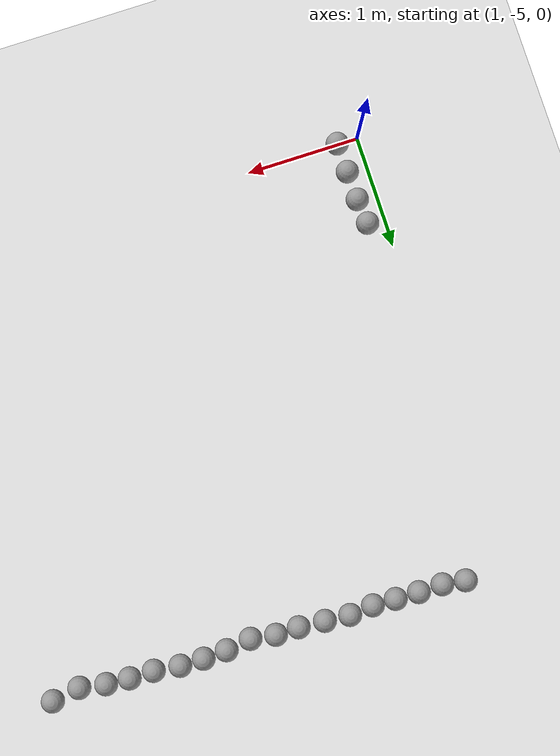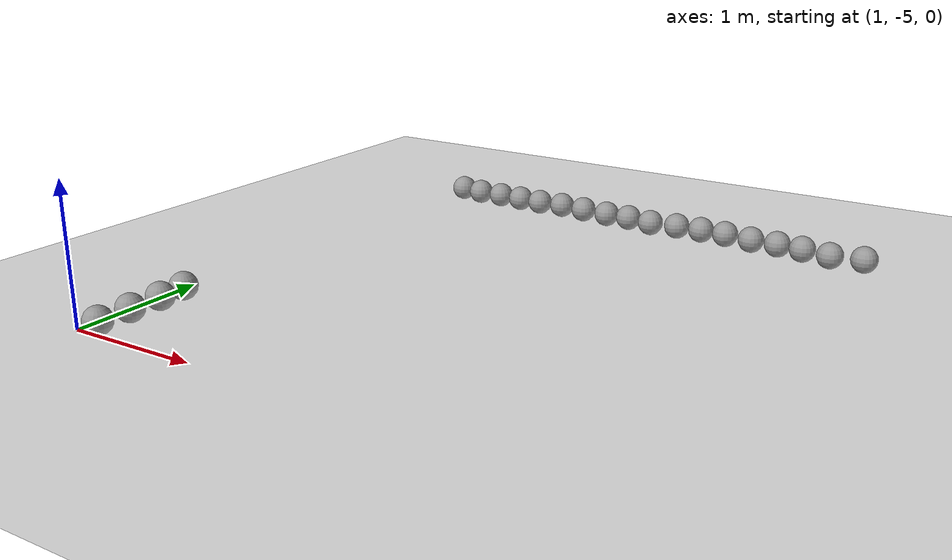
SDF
<sdf version="1.7">
 <world name="default">
  <model name="ground_plane">
   <static>1</static>
   <link name="link">
    <collision name="collision">
     <geometry><plane><normal>0 0 1</normal><size>100 100</size></plane></geometry>
     <surface>
      <contact><collide_bitmask>65535</collide_bitmask></contact>
      <friction><ode><mu>100</mu><mu2>50</mu2></ode></friction>
     </surface>
    </collision>
    <visual name="visual">
     <cast_shadows>0</cast_shadows>
     <geometry><plane><normal>0 0 1</normal><size>100 100</size></plane></geometry>
     <material>
      <script><uri>file://media/materials/scripts/gazebo.material</uri><name>Gazebo/White</name></script>
     </material>
    </visual>
   </link>
  </model>
  <model name="sphere_52">
   <link name="link_0">
    <inertial>
     <mass>1</mass>
     <inertia><ixx>0.1</ixx><ixy>0</ixy><ixz>0</ixz><iyy>0.1</iyy><iyz>0</iyz><izz>0.1</izz></inertia>
    </inertial>
    <visual name="visual">
     <geometry><sphere><radius>0.1</radius></sphere></geometry>
     <material>
      <lighting>1</lighting>
      <script><uri>file://media/materials/scripts/gazebo.material</uri><name>Gazebo/Grey</name></script>
      <shader type="pixel"><normal_map>__default__</normal_map></shader>
      <ambient>0.3 0.3 0.3 1</ambient>
      <diffuse>0.7 0.7 0.7 1</diffuse>
      <specular>0.01 0.01 0.01 1</specular>
      <emissive>0 0 0 1</emissive>
     </material>
    </visual>
    <collision name="collision">
     <geometry><sphere><radius>0.1</radius></sphere></geometry>
     <surface>
      <friction>
       <ode><mu>1</mu><mu2>1</mu2><fdir1>0 0 0</fdir1><slip1>0</slip1><slip2>0</slip2></ode>
       <torsional>
        <coefficient>1</coefficient>
        <patch_radius>0</patch_radius>
        <surface_radius>0</surface_radius>
        <use_patch_radius>1</use_patch_radius>
        <ode><slip>0</slip></ode>
       </torsional>
      </friction>
      <bounce><restitution_coefficient>0</restitution_coefficient><threshold>1e+06</threshold></bounce>
      <contact>
       <collide_without_contact>0</collide_without_contact>
       <collide_without_contact_bitmask>1</collide_without_contact_bitmask>
       <collide_bitmask>1</collide_bitmask>
       <ode>
        <soft_cfm>0</soft_cfm>
        <soft_erp>0.2</soft_erp>
        <kp>1e+13</kp>
        <kd>1</kd>
        <max_vel>0.01</max_vel>
        <min_depth>0</min_depth>
       </ode>
       <bullet>
        <split_impulse>1</split_impulse>
        <split_impulse_penetration_threshold>-0.01</split_impulse_penetration_threshold>
        <soft_cfm>0</soft_cfm>
        <soft_erp>0.2</soft_erp>
        <kp>1e+13</kp>
        <kd>1</kd>
       </bullet>
      </contact>
     </surface>
    </collision>
   </link>
   <static>0</static>
   <pose>1.33949 -1.07851 0.1 -0.03644 0.020857 -0.02948</pose>
  </model>
  <model name="sphere_53">
   <link name="link_0">
    <inertial>
     <mass>1</mass>
     <inertia><ixx>0.1</ixx><ixy>0</ixy><ixz>0</ixz><iyy>0.1</iyy><iyz>0</iyz><izz>0.1</izz></inertia>
    </inertial>
    <visual name="visual">
     <geometry><sphere><radius>0.1</radius></sphere></geometry>
     <material>
      <lighting>1</lighting>
      <script><uri>file://media/materials/scripts/gazebo.material</uri><name>Gazebo/Grey</name></script>
      <shader type="pixel"><normal_map>__default__</normal_map></shader>
      <ambient>0.3 0.3 0.3 1</ambient>
      <diffuse>0.7 0.7 0.7 1</diffuse>
      <specular>0.01 0.01 0.01 1</specular>
      <emissive>0 0 0 1</emissive>
     </material>
    </visual>
    <collision name="collision">
     <geometry><sphere><radius>0.1</radius></sphere></geometry>
     <surface>
      <friction>
       <ode><mu>1</mu><mu2>1</mu2><fdir1>0 0 0</fdir1><slip1>0</slip1><slip2>0</slip2></ode>
       <torsional>
        <coefficient>1</coefficient>
        <patch_radius>0</patch_radius>
        <surface_radius>0</surface_radius>
        <use_patch_radius>1</use_patch_radius>
        <ode><slip>0</slip></ode>
       </torsional>
      </friction>
      <bounce><restitution_coefficient>0</restitution_coefficient><threshold>1e+06</threshold></bounce>
      <contact>
       <collide_without_contact>0</collide_without_contact>
       <collide_without_contact_bitmask>1</collide_without_contact_bitmask>
       <collide_bitmask>1</collide_bitmask>
       <ode>
        <soft_cfm>0</soft_cfm>
        <soft_erp>0.2</soft_erp>
        <kp>1e+13</kp>
        <kd>1</kd>
        <max_vel>0.01</max_vel>
        <min_depth>0</min_depth>
       </ode>
       <bullet>
        <split_impulse>1</split_impulse>
        <split_impulse_penetration_threshold>-0.01</split_impulse_penetration_threshold>
        <soft_cfm>0</soft_cfm>
        <soft_erp>0.2</soft_erp>
        <kp>1e+13</kp>
        <kd>1</kd>
       </bullet>
      </contact>
     </surface>
    </collision>
   </link>
   <static>0</static>
   <pose>1.53863 -1.10758 0.1 0 -0 0</pose>
  </model>
  <model name="sphere_54">
   <link name="link_0">
    <inertial>
     <mass>1</mass>
     <inertia><ixx>0.1</ixx><ixy>0</ixy><ixz>0</ixz><iyy>0.1</iyy><iyz>0</iyz><izz>0.1</izz></inertia>
    </inertial>
    <visual name="visual">
     <geometry><sphere><radius>0.1</radius></sphere></geometry>
     <material>
      <lighting>1</lighting>
      <script><uri>file://media/materials/scripts/gazebo.material</uri><name>Gazebo/Grey</name></script>
      <shader type="pixel"><normal_map>__default__</normal_map></shader>
      <ambient>0.3 0.3 0.3 1</ambient>
      <diffuse>0.7 0.7 0.7 1</diffuse>
      <specular>0.01 0.01 0.01 1</specular>
      <emissive>0 0 0 1</emissive>
     </material>
    </visual>
    <collision name="collision">
     <geometry><sphere><radius>0.1</radius></sphere></geometry>
     <surface>
      <friction>
       <ode><mu>1</mu><mu2>1</mu2><fdir1>0 0 0</fdir1><slip1>0</slip1><slip2>0</slip2></ode>
       <torsional>
        <coefficient>1</coefficient>
        <patch_radius>0</patch_radius>
        <surface_radius>0</surface_radius>
        <use_patch_radius>1</use_patch_radius>
        <ode><slip>0</slip></ode>
       </torsional>
      </friction>
      <bounce><restitution_coefficient>0</restitution_coefficient><threshold>1e+06</threshold></bounce>
      <contact>
       <collide_without_contact>0</collide_without_contact>
       <collide_without_contact_bitmask>1</collide_without_contact_bitmask>
       <collide_bitmask>1</collide_bitmask>
       <ode>
        <soft_cfm>0</soft_cfm>
        <soft_erp>0.2</soft_erp>
        <kp>1e+13</kp>
        <kd>1</kd>
        <max_vel>0.01</max_vel>
        <min_depth>0</min_depth>
       </ode>
       <bullet>
        <split_impulse>1</split_impulse>
        <split_impulse_penetration_threshold>-0.01</split_impulse_penetration_threshold>
        <soft_cfm>0</soft_cfm>
        <soft_erp>0.2</soft_erp>
        <kp>1e+13</kp>
        <kd>1</kd>
       </bullet>
      </contact>
     </surface>
    </collision>
   </link>
   <static>0</static>
   <pose>1.74654 -1.10677 0.1 -0.002019 -0.054889 0.000367</pose>
  </model>
  <model name="sphere_55">
   <link name="link_0">
    <inertial>
     <mass>1</mass>
     <inertia><ixx>0.1</ixx><ixy>0</ixy><ixz>0</ixz><iyy>0.1</iyy><iyz>0</iyz><izz>0.1</izz></inertia>
    </inertial>
    <visual name="visual">
     <geometry><sphere><radius>0.1</radius></sphere></geometry>
     <material>
      <lighting>1</lighting>
      <script><uri>file://media/materials/scripts/gazebo.material</uri><name>Gazebo/Grey</name></script>
      <shader type="pixel"><normal_map>__default__</normal_map></shader>
      <ambient>0.3 0.3 0.3 1</ambient>
      <diffuse>0.7 0.7 0.7 1</diffuse>
      <specular>0.01 0.01 0.01 1</specular>
      <emissive>0 0 0 1</emissive>
     </material>
    </visual>
    <collision name="collision">
     <geometry><sphere><radius>0.1</radius></sphere></geometry>
     <surface>
      <friction>
       <ode><mu>1</mu><mu2>1</mu2><fdir1>0 0 0</fdir1><slip1>0</slip1><slip2>0</slip2></ode>
       <torsional>
        <coefficient>1</coefficient>
        <patch_radius>0</patch_radius>
        <surface_radius>0</surface_radius>
        <use_patch_radius>1</use_patch_radius>
        <ode><slip>0</slip></ode>
       </torsional>
      </friction>
      <bounce><restitution_coefficient>0</restitution_coefficient><threshold>1e+06</threshold></bounce>
      <contact>
       <collide_without_contact>0</collide_without_contact>
       <collide_without_contact_bitmask>1</collide_without_contact_bitmask>
       <collide_bitmask>1</collide_bitmask>
       <ode>
        <soft_cfm>0</soft_cfm>
        <soft_erp>0.2</soft_erp>
        <kp>1e+13</kp>
        <kd>1</kd>
        <max_vel>0.01</max_vel>
        <min_depth>0</min_depth>
       </ode>
       <bullet>
        <split_impulse>1</split_impulse>
        <split_impulse_penetration_threshold>-0.01</split_impulse_penetration_threshold>
        <soft_cfm>0</soft_cfm>
        <soft_erp>0.2</soft_erp>
        <kp>1e+13</kp>
        <kd>1</kd>
       </bullet>
      </contact>
     </surface>
    </collision>
   </link>
   <static>0</static>
   <pose>1.95037 -1.11313 0.1 0.001673 0.048323 0.000366</pose>
  </model>
  <model name="sphere_56">
   <link name="link_0">
    <inertial>
     <mass>1</mass>
     <inertia><ixx>0.1</ixx><ixy>0</ixy><ixz>0</ixz><iyy>0.1</iyy><iyz>0</iyz><izz>0.1</izz></inertia>
    </inertial>
    <visual name="visual">
     <geometry><sphere><radius>0.1</radius></sphere></geometry>
     <material>
      <lighting>1</lighting>
      <script><uri>file://media/materials/scripts/gazebo.material</uri><name>Gazebo/Grey</name></script>
      <shader type="pixel"><normal_map>__default__</normal_map></shader>
      <ambient>0.3 0.3 0.3 1</ambient>
      <diffuse>0.7 0.7 0.7 1</diffuse>
      <specular>0.01 0.01 0.01 1</specular>
      <emissive>0 0 0 1</emissive>
     </material>
    </visual>
    <collision name="collision">
     <geometry><sphere><radius>0.1</radius></sphere></geometry>
     <surface>
      <friction>
       <ode><mu>1</mu><mu2>1</mu2><fdir1>0 0 0</fdir1><slip1>0</slip1><slip2>0</slip2></ode>
       <torsional>
        <coefficient>1</coefficient>
        <patch_radius>0</patch_radius>
        <surface_radius>0</surface_radius>
        <use_patch_radius>1</use_patch_radius>
        <ode><slip>0</slip></ode>
       </torsional>
      </friction>
      <bounce><restitution_coefficient>0</restitution_coefficient><threshold>1e+06</threshold></bounce>
      <contact>
       <collide_without_contact>0</collide_without_contact>
       <collide_without_contact_bitmask>1</collide_without_contact_bitmask>
       <collide_bitmask>1</collide_bitmask>
       <ode>
        <soft_cfm>0</soft_cfm>
        <soft_erp>0.2</soft_erp>
        <kp>1e+13</kp>
        <kd>1</kd>
        <max_vel>0.01</max_vel>
        <min_depth>0</min_depth>
       </ode>
       <bullet>
        <split_impulse>1</split_impulse>
        <split_impulse_penetration_threshold>-0.01</split_impulse_penetration_threshold>
        <soft_cfm>0</soft_cfm>
        <soft_erp>0.2</soft_erp>
        <kp>1e+13</kp>
        <kd>1</kd>
       </bullet>
      </contact>
     </surface>
    </collision>
   </link>
   <static>0</static>
   <pose>2.15023 -1.12104 0.1 3.5e-05 0.000553 1.5e-05</pose>
  </model>
  <model name="sphere_57">
   <link name="link_0">
    <inertial>
     <mass>1</mass>
     <inertia><ixx>0.1</ixx><ixy>0</ixy><ixz>0</ixz><iyy>0.1</iyy><iyz>0</iyz><izz>0.1</izz></inertia>
    </inertial>
    <visual name="visual">
     <geometry><sphere><radius>0.1</radius></sphere></geometry>
     <material>
      <lighting>1</lighting>
      <script><uri>file://media/materials/scripts/gazebo.material</uri><name>Gazebo/Grey</name></script>
      <shader type="pixel"><normal_map>__default__</normal_map></shader>
      <ambient>0.3 0.3 0.3 1</ambient>
      <diffuse>0.7 0.7 0.7 1</diffuse>
      <specular>0.01 0.01 0.01 1</specular>
      <emissive>0 0 0 1</emissive>
     </material>
    </visual>
    <collision name="collision">
     <geometry><sphere><radius>0.1</radius></sphere></geometry>
     <surface>
      <friction>
       <ode><mu>1</mu><mu2>1</mu2><fdir1>0 0 0</fdir1><slip1>0</slip1><slip2>0</slip2></ode>
       <torsional>
        <coefficient>1</coefficient>
        <patch_radius>0</patch_radius>
        <surface_radius>0</surface_radius>
        <use_patch_radius>1</use_patch_radius>
        <ode><slip>0</slip></ode>
       </torsional>
      </friction>
      <bounce><restitution_coefficient>0</restitution_coefficient><threshold>1e+06</threshold></bounce>
      <contact>
       <collide_without_contact>0</collide_without_contact>
       <collide_without_contact_bitmask>1</collide_without_contact_bitmask>
       <collide_bitmask>1</collide_bitmask>
       <ode>
        <soft_cfm>0</soft_cfm>
        <soft_erp>0.2</soft_erp>
        <kp>1e+13</kp>
        <kd>1</kd>
        <max_vel>0.01</max_vel>
        <min_depth>0</min_depth>
       </ode>
       <bullet>
        <split_impulse>1</split_impulse>
        <split_impulse_penetration_threshold>-0.01</split_impulse_penetration_threshold>
        <soft_cfm>0</soft_cfm>
        <soft_erp>0.2</soft_erp>
        <kp>1e+13</kp>
        <kd>1</kd>
       </bullet>
      </contact>
     </surface>
    </collision>
   </link>
   <static>0</static>
   <pose>2.35701 -1.10418 0.1 0 -0 0</pose>
  </model>
  <model name="sphere_58">
   <link name="link_0">
    <inertial>
     <mass>1</mass>
     <inertia><ixx>0.1</ixx><ixy>0</ixy><ixz>0</ixz><iyy>0.1</iyy><iyz>0</iyz><izz>0.1</izz></inertia>
    </inertial>
    <visual name="visual">
     <geometry><sphere><radius>0.1</radius></sphere></geometry>
     <material>
      <lighting>1</lighting>
      <script><uri>file://media/materials/scripts/gazebo.material</uri><name>Gazebo/Grey</name></script>
      <shader type="pixel"><normal_map>__default__</normal_map></shader>
      <ambient>0.3 0.3 0.3 1</ambient>
      <diffuse>0.7 0.7 0.7 1</diffuse>
      <specular>0.01 0.01 0.01 1</specular>
      <emissive>0 0 0 1</emissive>
     </material>
    </visual>
    <collision name="collision">
     <geometry><sphere><radius>0.1</radius></sphere></geometry>
     <surface>
      <friction>
       <ode><mu>1</mu><mu2>1</mu2><fdir1>0 0 0</fdir1><slip1>0</slip1><slip2>0</slip2></ode>
       <torsional>
        <coefficient>1</coefficient>
        <patch_radius>0</patch_radius>
        <surface_radius>0</surface_radius>
        <use_patch_radius>1</use_patch_radius>
        <ode><slip>0</slip></ode>
       </torsional>
      </friction>
      <bounce><restitution_coefficient>0</restitution_coefficient><threshold>1e+06</threshold></bounce>
      <contact>
       <collide_without_contact>0</collide_without_contact>
       <collide_without_contact_bitmask>1</collide_without_contact_bitmask>
       <collide_bitmask>1</collide_bitmask>
       <ode>
        <soft_cfm>0</soft_cfm>
        <soft_erp>0.2</soft_erp>
        <kp>1e+13</kp>
        <kd>1</kd>
        <max_vel>0.01</max_vel>
        <min_depth>0</min_depth>
       </ode>
       <bullet>
        <split_impulse>1</split_impulse>
        <split_impulse_penetration_threshold>-0.01</split_impulse_penetration_threshold>
        <soft_cfm>0</soft_cfm>
        <soft_erp>0.2</soft_erp>
        <kp>1e+13</kp>
        <kd>1</kd>
       </bullet>
      </contact>
     </surface>
    </collision>
   </link>
   <static>0</static>
   <pose>2.57456 -1.12271 0.1 0 -0 0</pose>
  </model>
  <model name="sphere_59">
   <link name="link_0">
    <inertial>
     <mass>1</mass>
     <inertia><ixx>0.1</ixx><ixy>0</ixy><ixz>0</ixz><iyy>0.1</iyy><iyz>0</iyz><izz>0.1</izz></inertia>
    </inertial>
    <visual name="visual">
     <geometry><sphere><radius>0.1</radius></sphere></geometry>
     <material>
      <lighting>1</lighting>
      <script><uri>file://media/materials/scripts/gazebo.material</uri><name>Gazebo/Grey</name></script>
      <shader type="pixel"><normal_map>__default__</normal_map></shader>
      <ambient>0.3 0.3 0.3 1</ambient>
      <diffuse>0.7 0.7 0.7 1</diffuse>
      <specular>0.01 0.01 0.01 1</specular>
      <emissive>0 0 0 1</emissive>
     </material>
    </visual>
    <collision name="collision">
     <geometry><sphere><radius>0.1</radius></sphere></geometry>
     <surface>
      <friction>
       <ode><mu>1</mu><mu2>1</mu2><fdir1>0 0 0</fdir1><slip1>0</slip1><slip2>0</slip2></ode>
       <torsional>
        <coefficient>1</coefficient>
        <patch_radius>0</patch_radius>
        <surface_radius>0</surface_radius>
        <use_patch_radius>1</use_patch_radius>
        <ode><slip>0</slip></ode>
       </torsional>
      </friction>
      <bounce><restitution_coefficient>0</restitution_coefficient><threshold>1e+06</threshold></bounce>
      <contact>
       <collide_without_contact>0</collide_without_contact>
       <collide_without_contact_bitmask>1</collide_without_contact_bitmask>
       <collide_bitmask>1</collide_bitmask>
       <ode>
        <soft_cfm>0</soft_cfm>
        <soft_erp>0.2</soft_erp>
        <kp>1e+13</kp>
        <kd>1</kd>
        <max_vel>0.01</max_vel>
        <min_depth>0</min_depth>
       </ode>
       <bullet>
        <split_impulse>1</split_impulse>
        <split_impulse_penetration_threshold>-0.01</split_impulse_penetration_threshold>
        <soft_cfm>0</soft_cfm>
        <soft_erp>0.2</soft_erp>
        <kp>1e+13</kp>
        <kd>1</kd>
       </bullet>
      </contact>
     </surface>
    </collision>
   </link>
   <static>0</static>
   <pose>2.80076 -1.13946 0.1 0 -0 0</pose>
  </model>
  <model name="sphere_60">
   <link name="link_0">
    <inertial>
     <mass>1</mass>
     <inertia><ixx>0.1</ixx><ixy>0</ixy><ixz>0</ixz><iyy>0.1</iyy><iyz>0</iyz><izz>0.1</izz></inertia>
    </inertial>
    <visual name="visual">
     <geometry><sphere><radius>0.1</radius></sphere></geometry>
     <material>
      <lighting>1</lighting>
      <script><uri>file://media/materials/scripts/gazebo.material</uri><name>Gazebo/Grey</name></script>
      <shader type="pixel"><normal_map>__default__</normal_map></shader>
      <ambient>0.3 0.3 0.3 1</ambient>
      <diffuse>0.7 0.7 0.7 1</diffuse>
      <specular>0.01 0.01 0.01 1</specular>
      <emissive>0 0 0 1</emissive>
     </material>
    </visual>
    <collision name="collision">
     <geometry><sphere><radius>0.1</radius></sphere></geometry>
     <surface>
      <friction>
       <ode><mu>1</mu><mu2>1</mu2><fdir1>0 0 0</fdir1><slip1>0</slip1><slip2>0</slip2></ode>
       <torsional>
        <coefficient>1</coefficient>
        <patch_radius>0</patch_radius>
        <surface_radius>0</surface_radius>
        <use_patch_radius>1</use_patch_radius>
        <ode><slip>0</slip></ode>
       </torsional>
      </friction>
      <bounce><restitution_coefficient>0</restitution_coefficient><threshold>1e+06</threshold></bounce>
      <contact>
       <collide_without_contact>0</collide_without_contact>
       <collide_without_contact_bitmask>1</collide_without_contact_bitmask>
       <collide_bitmask>1</collide_bitmask>
       <ode>
        <soft_cfm>0</soft_cfm>
        <soft_erp>0.2</soft_erp>
        <kp>1e+13</kp>
        <kd>1</kd>
        <max_vel>0.01</max_vel>
        <min_depth>0</min_depth>
       </ode>
       <bullet>
        <split_impulse>1</split_impulse>
        <split_impulse_penetration_threshold>-0.01</split_impulse_penetration_threshold>
        <soft_cfm>0</soft_cfm>
        <soft_erp>0.2</soft_erp>
        <kp>1e+13</kp>
        <kd>1</kd>
       </bullet>
      </contact>
     </surface>
    </collision>
   </link>
   <static>0</static>
   <pose>3.00156 -1.13917 0.1 0 -0 0</pose>
  </model>
  <model name="sphere_61">
   <link name="link_0">
    <inertial>
     <mass>1</mass>
     <inertia><ixx>0.1</ixx><ixy>0</ixy><ixz>0</ixz><iyy>0.1</iyy><iyz>0</iyz><izz>0.1</izz></inertia>
    </inertial>
    <visual name="visual">
     <geometry><sphere><radius>0.1</radius></sphere></geometry>
     <material>
      <lighting>1</lighting>
      <script><uri>file://media/materials/scripts/gazebo.material</uri><name>Gazebo/Grey</name></script>
      <shader type="pixel"><normal_map>__default__</normal_map></shader>
      <ambient>0.3 0.3 0.3 1</ambient>
      <diffuse>0.7 0.7 0.7 1</diffuse>
      <specular>0.01 0.01 0.01 1</specular>
      <emissive>0 0 0 1</emissive>
     </material>
    </visual>
    <collision name="collision">
     <geometry><sphere><radius>0.1</radius></sphere></geometry>
     <surface>
      <friction>
       <ode><mu>1</mu><mu2>1</mu2><fdir1>0 0 0</fdir1><slip1>0</slip1><slip2>0</slip2></ode>
       <torsional>
        <coefficient>1</coefficient>
        <patch_radius>0</patch_radius>
        <surface_radius>0</surface_radius>
        <use_patch_radius>1</use_patch_radius>
        <ode><slip>0</slip></ode>
       </torsional>
      </friction>
      <bounce><restitution_coefficient>0</restitution_coefficient><threshold>1e+06</threshold></bounce>
      <contact>
       <collide_without_contact>0</collide_without_contact>
       <collide_without_contact_bitmask>1</collide_without_contact_bitmask>
       <collide_bitmask>1</collide_bitmask>
       <ode>
        <soft_cfm>0</soft_cfm>
        <soft_erp>0.2</soft_erp>
        <kp>1e+13</kp>
        <kd>1</kd>
        <max_vel>0.01</max_vel>
        <min_depth>0</min_depth>
       </ode>
       <bullet>
        <split_impulse>1</split_impulse>
        <split_impulse_penetration_threshold>-0.01</split_impulse_penetration_threshold>
        <soft_cfm>0</soft_cfm>
        <soft_erp>0.2</soft_erp>
        <kp>1e+13</kp>
        <kd>1</kd>
       </bullet>
      </contact>
     </surface>
    </collision>
   </link>
   <static>0</static>
   <pose>3.2156 -1.17335 0.1 0 -0 0</pose>
  </model>
  <model name="sphere_62">
   <link name="link_0">
    <inertial>
     <mass>1</mass>
     <inertia><ixx>0.1</ixx><ixy>0</ixy><ixz>0</ixz><iyy>0.1</iyy><iyz>0</iyz><izz>0.1</izz></inertia>
    </inertial>
    <visual name="visual">
     <geometry><sphere><radius>0.1</radius></sphere></geometry>
     <material>
      <lighting>1</lighting>
      <script><uri>file://media/materials/scripts/gazebo.material</uri><name>Gazebo/Grey</name></script>
      <shader type="pixel"><normal_map>__default__</normal_map></shader>
      <ambient>0.3 0.3 0.3 1</ambient>
      <diffuse>0.7 0.7 0.7 1</diffuse>
      <specular>0.01 0.01 0.01 1</specular>
      <emissive>0 0 0 1</emissive>
     </material>
    </visual>
    <collision name="collision">
     <geometry><sphere><radius>0.1</radius></sphere></geometry>
     <surface>
      <friction>
       <ode><mu>1</mu><mu2>1</mu2><fdir1>0 0 0</fdir1><slip1>0</slip1><slip2>0</slip2></ode>
       <torsional>
        <coefficient>1</coefficient>
        <patch_radius>0</patch_radius>
        <surface_radius>0</surface_radius>
        <use_patch_radius>1</use_patch_radius>
        <ode><slip>0</slip></ode>
       </torsional>
      </friction>
      <bounce><restitution_coefficient>0</restitution_coefficient><threshold>1e+06</threshold></bounce>
      <contact>
       <collide_without_contact>0</collide_without_contact>
       <collide_without_contact_bitmask>1</collide_without_contact_bitmask>
       <collide_bitmask>1</collide_bitmask>
       <ode>
        <soft_cfm>0</soft_cfm>
        <soft_erp>0.2</soft_erp>
        <kp>1e+13</kp>
        <kd>1</kd>
        <max_vel>0.01</max_vel>
        <min_depth>0</min_depth>
       </ode>
       <bullet>
        <split_impulse>1</split_impulse>
        <split_impulse_penetration_threshold>-0.01</split_impulse_penetration_threshold>
        <soft_cfm>0</soft_cfm>
        <soft_erp>0.2</soft_erp>
        <kp>1e+13</kp>
        <kd>1</kd>
       </bullet>
      </contact>
     </surface>
    </collision>
   </link>
   <static>0</static>
   <pose>3.43477 -1.14506 0.1 0.001921 -0.045892 -0.000385</pose>
  </model>
  <model name="sphere_63">
   <link name="link_0">
    <inertial>
     <mass>1</mass>
     <inertia><ixx>0.1</ixx><ixy>0</ixy><ixz>0</ixz><iyy>0.1</iyy><iyz>0</iyz><izz>0.1</izz></inertia>
    </inertial>
    <visual name="visual">
     <geometry><sphere><radius>0.1</radius></sphere></geometry>
     <material>
      <lighting>1</lighting>
      <script><uri>file://media/materials/scripts/gazebo.material</uri><name>Gazebo/Grey</name></script>
      <shader type="pixel"><normal_map>__default__</normal_map></shader>
      <ambient>0.3 0.3 0.3 1</ambient>
      <diffuse>0.7 0.7 0.7 1</diffuse>
      <specular>0.01 0.01 0.01 1</specular>
      <emissive>0 0 0 1</emissive>
     </material>
    </visual>
    <collision name="collision">
     <geometry><sphere><radius>0.1</radius></sphere></geometry>
     <surface>
      <friction>
       <ode><mu>1</mu><mu2>1</mu2><fdir1>0 0 0</fdir1><slip1>0</slip1><slip2>0</slip2></ode>
       <torsional>
        <coefficient>1</coefficient>
        <patch_radius>0</patch_radius>
        <surface_radius>0</surface_radius>
        <use_patch_radius>1</use_patch_radius>
        <ode><slip>0</slip></ode>
       </torsional>
      </friction>
      <bounce><restitution_coefficient>0</restitution_coefficient><threshold>1e+06</threshold></bounce>
      <contact>
       <collide_without_contact>0</collide_without_contact>
       <collide_without_contact_bitmask>1</collide_without_contact_bitmask>
       <collide_bitmask>1</collide_bitmask>
       <ode>
        <soft_cfm>0</soft_cfm>
        <soft_erp>0.2</soft_erp>
        <kp>1e+13</kp>
        <kd>1</kd>
        <max_vel>0.01</max_vel>
        <min_depth>0</min_depth>
       </ode>
       <bullet>
        <split_impulse>1</split_impulse>
        <split_impulse_penetration_threshold>-0.01</split_impulse_penetration_threshold>
        <soft_cfm>0</soft_cfm>
        <soft_erp>0.2</soft_erp>
        <kp>1e+13</kp>
        <kd>1</kd>
       </bullet>
      </contact>
     </surface>
    </collision>
   </link>
   <static>0</static>
   <pose>3.63971 -1.13793 0.1 -0.002063 0.05059 -0.000394</pose>
  </model>
  <model name="sphere_64">
   <link name="link_0">
    <inertial>
     <mass>1</mass>
     <inertia><ixx>0.1</ixx><ixy>0</ixy><ixz>0</ixz><iyy>0.1</iyy><iyz>0</iyz><izz>0.1</izz></inertia>
    </inertial>
    <visual name="visual">
     <geometry><sphere><radius>0.1</radius></sphere></geometry>
     <material>
      <lighting>1</lighting>
      <script><uri>file://media/materials/scripts/gazebo.material</uri><name>Gazebo/Grey</name></script>
      <shader type="pixel"><normal_map>__default__</normal_map></shader>
      <ambient>0.3 0.3 0.3 1</ambient>
      <diffuse>0.7 0.7 0.7 1</diffuse>
      <specular>0.01 0.01 0.01 1</specular>
      <emissive>0 0 0 1</emissive>
     </material>
    </visual>
    <collision name="collision">
     <geometry><sphere><radius>0.1</radius></sphere></geometry>
     <surface>
      <friction>
       <ode><mu>1</mu><mu2>1</mu2><fdir1>0 0 0</fdir1><slip1>0</slip1><slip2>0</slip2></ode>
       <torsional>
        <coefficient>1</coefficient>
        <patch_radius>0</patch_radius>
        <surface_radius>0</surface_radius>
        <use_patch_radius>1</use_patch_radius>
        <ode><slip>0</slip></ode>
       </torsional>
      </friction>
      <bounce><restitution_coefficient>0</restitution_coefficient><threshold>1e+06</threshold></bounce>
      <contact>
       <collide_without_contact>0</collide_without_contact>
       <collide_without_contact_bitmask>1</collide_without_contact_bitmask>
       <collide_bitmask>1</collide_bitmask>
       <ode>
        <soft_cfm>0</soft_cfm>
        <soft_erp>0.2</soft_erp>
        <kp>1e+13</kp>
        <kd>1</kd>
        <max_vel>0.01</max_vel>
        <min_depth>0</min_depth>
       </ode>
       <bullet>
        <split_impulse>1</split_impulse>
        <split_impulse_penetration_threshold>-0.01</split_impulse_penetration_threshold>
        <soft_cfm>0</soft_cfm>
        <soft_erp>0.2</soft_erp>
        <kp>1e+13</kp>
        <kd>1</kd>
       </bullet>
      </contact>
     </surface>
    </collision>
   </link>
   <static>0</static>
   <pose>3.84414 -1.1419 0.1 0 -0 0</pose>
  </model>
  <model name="sphere_93">
   <link name="link_0">
    <inertial>
     <mass>1</mass>
     <inertia><ixx>0.1</ixx><ixy>0</ixy><ixz>0</ixz><iyy>0.1</iyy><iyz>0</iyz><izz>0.1</izz></inertia>
    </inertial>
    <visual name="visual">
     <geometry><sphere><radius>0.1</radius></sphere></geometry>
     <material>
      <lighting>1</lighting>
      <script><uri>file://media/materials/scripts/gazebo.material</uri><name>Gazebo/Grey</name></script>
      <shader type="pixel"><normal_map>__default__</normal_map></shader>
      <ambient>0.3 0.3 0.3 1</ambient>
      <diffuse>0.7 0.7 0.7 1</diffuse>
      <specular>0.01 0.01 0.01 1</specular>
      <emissive>0 0 0 1</emissive>
     </material>
    </visual>
    <collision name="collision">
     <geometry><sphere><radius>0.1</radius></sphere></geometry>
     <surface>
      <friction>
       <ode><mu>1</mu><mu2>1</mu2><fdir1>0 0 0</fdir1><slip1>0</slip1><slip2>0</slip2></ode>
       <torsional>
        <coefficient>1</coefficient>
        <patch_radius>0</patch_radius>
        <surface_radius>0</surface_radius>
        <use_patch_radius>1</use_patch_radius>
        <ode><slip>0</slip></ode>
       </torsional>
      </friction>
      <bounce><restitution_coefficient>0</restitution_coefficient><threshold>1e+06</threshold></bounce>
      <contact>
       <collide_without_contact>0</collide_without_contact>
       <collide_without_contact_bitmask>1</collide_without_contact_bitmask>
       <collide_bitmask>1</collide_bitmask>
       <ode>
        <soft_cfm>0</soft_cfm>
        <soft_erp>0.2</soft_erp>
        <kp>1e+13</kp>
        <kd>1</kd>
        <max_vel>0.01</max_vel>
        <min_depth>0</min_depth>
       </ode>
       <bullet>
        <split_impulse>1</split_impulse>
        <split_impulse_penetration_threshold>-0.01</split_impulse_penetration_threshold>
        <soft_cfm>0</soft_cfm>
        <soft_erp>0.2</soft_erp>
        <kp>1e+13</kp>
        <kd>1</kd>
       </bullet>
      </contact>
     </surface>
    </collision>
   </link>
   <static>0</static>
   <pose>4.06818 -1.17099 0.1 0 -0 0</pose>
  </model>
  <model name="sphere_95">
   <link name="link_0">
    <inertial>
     <mass>1</mass>
     <inertia><ixx>0.1</ixx><ixy>0</ixy><ixz>0</ixz><iyy>0.1</iyy><iyz>0</iyz><izz>0.1</izz></inertia>
    </inertial>
    <visual name="visual">
     <geometry><sphere><radius>0.1</radius></sphere></geometry>
     <material>
      <lighting>1</lighting>
      <script><uri>file://media/materials/scripts/gazebo.material</uri><name>Gazebo/Grey</name></script>
      <shader type="pixel"><normal_map>__default__</normal_map></shader>
      <ambient>0.3 0.3 0.3 1</ambient>
      <diffuse>0.7 0.7 0.7 1</diffuse>
      <specular>0.01 0.01 0.01 1</specular>
      <emissive>0 0 0 1</emissive>
     </material>
    </visual>
    <collision name="collision">
     <geometry><sphere><radius>0.1</radius></sphere></geometry>
     <surface>
      <friction>
       <ode><mu>1</mu><mu2>1</mu2><fdir1>0 0 0</fdir1><slip1>0</slip1><slip2>0</slip2></ode>
       <torsional>
        <coefficient>1</coefficient>
        <patch_radius>0</patch_radius>
        <surface_radius>0</surface_radius>
        <use_patch_radius>1</use_patch_radius>
        <ode><slip>0</slip></ode>
       </torsional>
      </friction>
      <bounce><restitution_coefficient>0</restitution_coefficient><threshold>1e+06</threshold></bounce>
      <contact>
       <collide_without_contact>0</collide_without_contact>
       <collide_without_contact_bitmask>1</collide_without_contact_bitmask>
       <collide_bitmask>1</collide_bitmask>
       <ode>
        <soft_cfm>0</soft_cfm>
        <soft_erp>0.2</soft_erp>
        <kp>1e+13</kp>
        <kd>1</kd>
        <max_vel>0.01</max_vel>
        <min_depth>0</min_depth>
       </ode>
       <bullet>
        <split_impulse>1</split_impulse>
        <split_impulse_penetration_threshold>-0.01</split_impulse_penetration_threshold>
        <soft_cfm>0</soft_cfm>
        <soft_erp>0.2</soft_erp>
        <kp>1e+13</kp>
        <kd>1</kd>
       </bullet>
      </contact>
     </surface>
    </collision>
   </link>
   <static>0</static>
   <pose>4.27932 -1.17349 0.1 -0.000594 -0.007856 7e-06</pose>
  </model>
  <model name="sphere_97">
   <link name="link_0">
    <inertial>
     <mass>1</mass>
     <inertia><ixx>0.1</ixx><ixy>0</ixy><ixz>0</ixz><iyy>0.1</iyy><iyz>0</iyz><izz>0.1</izz></inertia>
    </inertial>
    <visual name="visual">
     <geometry><sphere><radius>0.1</radius></sphere></geometry>
     <material>
      <lighting>1</lighting>
      <script><uri>file://media/materials/scripts/gazebo.material</uri><name>Gazebo/Grey</name></script>
      <shader type="pixel"><normal_map>__default__</normal_map></shader>
      <ambient>0.3 0.3 0.3 1</ambient>
      <diffuse>0.7 0.7 0.7 1</diffuse>
      <specular>0.01 0.01 0.01 1</specular>
      <emissive>0 0 0 1</emissive>
     </material>
    </visual>
    <collision name="collision">
     <geometry><sphere><radius>0.1</radius></sphere></geometry>
     <surface>
      <friction>
       <ode><mu>1</mu><mu2>1</mu2><fdir1>0 0 0</fdir1><slip1>0</slip1><slip2>0</slip2></ode>
       <torsional>
        <coefficient>1</coefficient>
        <patch_radius>0</patch_radius>
        <surface_radius>0</surface_radius>
        <use_patch_radius>1</use_patch_radius>
        <ode><slip>0</slip></ode>
       </torsional>
      </friction>
      <bounce><restitution_coefficient>0</restitution_coefficient><threshold>1e+06</threshold></bounce>
      <contact>
       <collide_without_contact>0</collide_without_contact>
       <collide_without_contact_bitmask>1</collide_without_contact_bitmask>
       <collide_bitmask>1</collide_bitmask>
       <ode>
        <soft_cfm>0</soft_cfm>
        <soft_erp>0.2</soft_erp>
        <kp>1e+13</kp>
        <kd>1</kd>
        <max_vel>0.01</max_vel>
        <min_depth>0</min_depth>
       </ode>
       <bullet>
        <split_impulse>1</split_impulse>
        <split_impulse_penetration_threshold>-0.01</split_impulse_penetration_threshold>
        <soft_cfm>0</soft_cfm>
        <soft_erp>0.2</soft_erp>
        <kp>1e+13</kp>
        <kd>1</kd>
       </bullet>
      </contact>
     </surface>
    </collision>
   </link>
   <static>0</static>
   <pose>4.48044 -1.18845 0.1 0.000654 0.008796 7e-06</pose>
  </model>
  <model name="sphere_99">
   <link name="link_0">
    <inertial>
     <mass>1</mass>
     <inertia><ixx>0.1</ixx><ixy>0</ixy><ixz>0</ixz><iyy>0.1</iyy><iyz>0</iyz><izz>0.1</izz></inertia>
    </inertial>
    <visual name="visual">
     <geometry><sphere><radius>0.1</radius></sphere></geometry>
     <material>
      <lighting>1</lighting>
      <script><uri>file://media/materials/scripts/gazebo.material</uri><name>Gazebo/Grey</name></script>
      <shader type="pixel"><normal_map>__default__</normal_map></shader>
      <ambient>0.3 0.3 0.3 1</ambient>
      <diffuse>0.7 0.7 0.7 1</diffuse>
      <specular>0.01 0.01 0.01 1</specular>
      <emissive>0 0 0 1</emissive>
     </material>
    </visual>
    <collision name="collision">
     <geometry><sphere><radius>0.1</radius></sphere></geometry>
     <surface>
      <friction>
       <ode><mu>1</mu><mu2>1</mu2><fdir1>0 0 0</fdir1><slip1>0</slip1><slip2>0</slip2></ode>
       <torsional>
        <coefficient>1</coefficient>
        <patch_radius>0</patch_radius>
        <surface_radius>0</surface_radius>
        <use_patch_radius>1</use_patch_radius>
        <ode><slip>0</slip></ode>
       </torsional>
      </friction>
      <bounce><restitution_coefficient>0</restitution_coefficient><threshold>1e+06</threshold></bounce>
      <contact>
       <collide_without_contact>0</collide_without_contact>
       <collide_without_contact_bitmask>1</collide_without_contact_bitmask>
       <collide_bitmask>1</collide_bitmask>
       <ode>
        <soft_cfm>0</soft_cfm>
        <soft_erp>0.2</soft_erp>
        <kp>1e+13</kp>
        <kd>1</kd>
        <max_vel>0.01</max_vel>
        <min_depth>0</min_depth>
       </ode>
       <bullet>
        <split_impulse>1</split_impulse>
        <split_impulse_penetration_threshold>-0.01</split_impulse_penetration_threshold>
        <soft_cfm>0</soft_cfm>
        <soft_erp>0.2</soft_erp>
        <kp>1e+13</kp>
        <kd>1</kd>
       </bullet>
      </contact>
     </surface>
    </collision>
   </link>
   <static>0</static>
   <pose>4.7036 -1.22897 0.1 0 -0 0</pose>
  </model>
  <model name="sphere_100">
   <link name="link_0">
    <inertial>
     <mass>1</mass>
     <inertia><ixx>0.1</ixx><ixy>0</ixy><ixz>0</ixz><iyy>0.1</iyy><iyz>0</iyz><izz>0.1</izz></inertia>
    </inertial>
    <visual name="visual">
     <geometry><sphere><radius>0.1</radius></sphere></geometry>
     <material>
      <lighting>1</lighting>
      <script><uri>file://media/materials/scripts/gazebo.material</uri><name>Gazebo/Grey</name></script>
      <shader type="pixel"><normal_map>__default__</normal_map></shader>
      <ambient>0.3 0.3 0.3 1</ambient>
      <diffuse>0.7 0.7 0.7 1</diffuse>
      <specular>0.01 0.01 0.01 1</specular>
      <emissive>0 0 0 1</emissive>
     </material>
    </visual>
    <collision name="collision">
     <geometry><sphere><radius>0.1</radius></sphere></geometry>
     <surface>
      <friction>
       <ode><mu>1</mu><mu2>1</mu2><fdir1>0 0 0</fdir1><slip1>0</slip1><slip2>0</slip2></ode>
       <torsional>
        <coefficient>1</coefficient>
        <patch_radius>0</patch_radius>
        <surface_radius>0</surface_radius>
        <use_patch_radius>1</use_patch_radius>
        <ode><slip>0</slip></ode>
       </torsional>
      </friction>
      <bounce><restitution_coefficient>0</restitution_coefficient><threshold>1e+06</threshold></bounce>
      <contact>
       <collide_without_contact>0</collide_without_contact>
       <collide_without_contact_bitmask>1</collide_without_contact_bitmask>
       <collide_bitmask>1</collide_bitmask>
       <ode>
        <soft_cfm>0</soft_cfm>
        <soft_erp>0.2</soft_erp>
        <kp>1e+13</kp>
        <kd>1</kd>
        <max_vel>0.01</max_vel>
        <min_depth>0</min_depth>
       </ode>
       <bullet>
        <split_impulse>1</split_impulse>
        <split_impulse_penetration_threshold>-0.01</split_impulse_penetration_threshold>
        <soft_cfm>0</soft_cfm>
        <soft_erp>0.2</soft_erp>
        <kp>1e+13</kp>
        <kd>1</kd>
       </bullet>
      </contact>
     </surface>
    </collision>
   </link>
   <static>0</static>
   <pose>4.94672 -1.19111 0.1 0 -0 0</pose>
  </model>
  <model name="sphere_105">
   <link name="link_0">
    <inertial>
     <mass>1</mass>
     <inertia><ixx>0.1</ixx><ixy>0</ixy><ixz>0</ixz><iyy>0.1</iyy><iyz>0</iyz><izz>0.1</izz></inertia>
    </inertial>
    <visual name="visual">
     <geometry><sphere><radius>0.1</radius></sphere></geometry>
     <material>
      <lighting>1</lighting>
      <script><uri>file://media/materials/scripts/gazebo.material</uri><name>Gazebo/Grey</name></script>
      <shader type="pixel"><normal_map>__default__</normal_map></shader>
      <ambient>0.3 0.3 0.3 1</ambient>
      <diffuse>0.7 0.7 0.7 1</diffuse>
      <specular>0.01 0.01 0.01 1</specular>
      <emissive>0 0 0 1</emissive>
     </material>
    </visual>
    <collision name="collision">
     <geometry><sphere><radius>0.1</radius></sphere></geometry>
     <surface>
      <friction>
       <ode><mu>1</mu><mu2>1</mu2><fdir1>0 0 0</fdir1><slip1>0</slip1><slip2>0</slip2></ode>
       <torsional>
        <coefficient>1</coefficient>
        <patch_radius>0</patch_radius>
        <surface_radius>0</surface_radius>
        <use_patch_radius>1</use_patch_radius>
        <ode><slip>0</slip></ode>
       </torsional>
      </friction>
      <bounce><restitution_coefficient>0</restitution_coefficient><threshold>1e+06</threshold></bounce>
      <contact>
       <collide_without_contact>0</collide_without_contact>
       <collide_without_contact_bitmask>1</collide_without_contact_bitmask>
       <collide_bitmask>1</collide_bitmask>
       <ode>
        <soft_cfm>0</soft_cfm>
        <soft_erp>0.2</soft_erp>
        <kp>1e+13</kp>
        <kd>1</kd>
        <max_vel>0.01</max_vel>
        <min_depth>0</min_depth>
       </ode>
       <bullet>
        <split_impulse>1</split_impulse>
        <split_impulse_penetration_threshold>-0.01</split_impulse_penetration_threshold>
        <soft_cfm>0</soft_cfm>
        <soft_erp>0.2</soft_erp>
        <kp>1e+13</kp>
        <kd>1</kd>
       </bullet>
      </contact>
     </surface>
    </collision>
   </link>
   <static>0</static>
   <pose>1.16339 -4.23936 0.1 0 -0 0</pose>
  </model>
  <model name="sphere_106">
   <link name="link_0">
    <inertial>
     <mass>1</mass>
     <inertia><ixx>0.1</ixx><ixy>0</ixy><ixz>0</ixz><iyy>0.1</iyy><iyz>0</iyz><izz>0.1</izz></inertia>
    </inertial>
    <visual name="visual">
     <geometry><sphere><radius>0.1</radius></sphere></geometry>
     <material>
      <lighting>1</lighting>
      <script><uri>file://media/materials/scripts/gazebo.material</uri><name>Gazebo/Grey</name></script>
      <shader type="pixel"><normal_map>__default__</normal_map></shader>
      <ambient>0.3 0.3 0.3 1</ambient>
      <diffuse>0.7 0.7 0.7 1</diffuse>
      <specular>0.01 0.01 0.01 1</specular>
      <emissive>0 0 0 1</emissive>
     </material>
    </visual>
    <collision name="collision">
     <geometry><sphere><radius>0.1</radius></sphere></geometry>
     <surface>
      <friction>
       <ode><mu>1</mu><mu2>1</mu2><fdir1>0 0 0</fdir1><slip1>0</slip1><slip2>0</slip2></ode>
       <torsional>
        <coefficient>1</coefficient>
        <patch_radius>0</patch_radius>
        <surface_radius>0</surface_radius>
        <use_patch_radius>1</use_patch_radius>
        <ode><slip>0</slip></ode>
       </torsional>
      </friction>
      <bounce><restitution_coefficient>0</restitution_coefficient><threshold>1e+06</threshold></bounce>
      <contact>
       <collide_without_contact>0</collide_without_contact>
       <collide_without_contact_bitmask>1</collide_without_contact_bitmask>
       <collide_bitmask>1</collide_bitmask>
       <ode>
        <soft_cfm>0</soft_cfm>
        <soft_erp>0.2</soft_erp>
        <kp>1e+13</kp>
        <kd>1</kd>
        <max_vel>0.01</max_vel>
        <min_depth>0</min_depth>
       </ode>
       <bullet>
        <split_impulse>1</split_impulse>
        <split_impulse_penetration_threshold>-0.01</split_impulse_penetration_threshold>
        <soft_cfm>0</soft_cfm>
        <soft_erp>0.2</soft_erp>
        <kp>1e+13</kp>
        <kd>1</kd>
       </bullet>
      </contact>
     </surface>
    </collision>
   </link>
   <static>0</static>
   <pose>1.18309 -4.46408 0.1 0 -0 0</pose>
  </model>
  <model name="sphere_107">
   <link name="link_0">
    <inertial>
     <mass>1</mass>
     <inertia><ixx>0.1</ixx><ixy>0</ixy><ixz>0</ixz><iyy>0.1</iyy><iyz>0</iyz><izz>0.1</izz></inertia>
    </inertial>
    <visual name="visual">
     <geometry><sphere><radius>0.1</radius></sphere></geometry>
     <material>
      <lighting>1</lighting>
      <script><uri>file://media/materials/scripts/gazebo.material</uri><name>Gazebo/Grey</name></script>
      <shader type="pixel"><normal_map>__default__</normal_map></shader>
      <ambient>0.3 0.3 0.3 1</ambient>
      <diffuse>0.7 0.7 0.7 1</diffuse>
      <specular>0.01 0.01 0.01 1</specular>
      <emissive>0 0 0 1</emissive>
     </material>
    </visual>
    <collision name="collision">
     <geometry><sphere><radius>0.1</radius></sphere></geometry>
     <surface>
      <friction>
       <ode><mu>1</mu><mu2>1</mu2><fdir1>0 0 0</fdir1><slip1>0</slip1><slip2>0</slip2></ode>
       <torsional>
        <coefficient>1</coefficient>
        <patch_radius>0</patch_radius>
        <surface_radius>0</surface_radius>
        <use_patch_radius>1</use_patch_radius>
        <ode><slip>0</slip></ode>
       </torsional>
      </friction>
      <bounce><restitution_coefficient>0</restitution_coefficient><threshold>1e+06</threshold></bounce>
      <contact>
       <collide_without_contact>0</collide_without_contact>
       <collide_without_contact_bitmask>1</collide_without_contact_bitmask>
       <collide_bitmask>1</collide_bitmask>
       <ode>
        <soft_cfm>0</soft_cfm>
        <soft_erp>0.2</soft_erp>
        <kp>1e+13</kp>
        <kd>1</kd>
        <max_vel>0.01</max_vel>
        <min_depth>0</min_depth>
       </ode>
       <bullet>
        <split_impulse>1</split_impulse>
        <split_impulse_penetration_threshold>-0.01</split_impulse_penetration_threshold>
        <soft_cfm>0</soft_cfm>
        <soft_erp>0.2</soft_erp>
        <kp>1e+13</kp>
        <kd>1</kd>
       </bullet>
      </contact>
     </surface>
    </collision>
   </link>
   <static>0</static>
   <pose>1.18855 -4.72236 0.1 0 -0 0</pose>
  </model>
  <model name="sphere_108">
   <link name="link_0">
    <inertial>
     <mass>1</mass>
     <inertia><ixx>0.1</ixx><ixy>0</ixy><ixz>0</ixz><iyy>0.1</iyy><iyz>0</iyz><izz>0.1</izz></inertia>
    </inertial>
    <visual name="visual">
     <geometry><sphere><radius>0.1</radius></sphere></geometry>
     <material>
      <lighting>1</lighting>
      <script><uri>file://media/materials/scripts/gazebo.material</uri><name>Gazebo/Grey</name></script>
      <shader type="pixel"><normal_map>__default__</normal_map></shader>
      <ambient>0.3 0.3 0.3 1</ambient>
      <diffuse>0.7 0.7 0.7 1</diffuse>
      <specular>0.01 0.01 0.01 1</specular>
      <emissive>0 0 0 1</emissive>
     </material>
    </visual>
    <collision name="collision">
     <geometry><sphere><radius>0.1</radius></sphere></geometry>
     <surface>
      <friction>
       <ode><mu>1</mu><mu2>1</mu2><fdir1>0 0 0</fdir1><slip1>0</slip1><slip2>0</slip2></ode>
       <torsional>
        <coefficient>1</coefficient>
        <patch_radius>0</patch_radius>
        <surface_radius>0</surface_radius>
        <use_patch_radius>1</use_patch_radius>
        <ode><slip>0</slip></ode>
       </torsional>
      </friction>
      <bounce><restitution_coefficient>0</restitution_coefficient><threshold>1e+06</threshold></bounce>
      <contact>
       <collide_without_contact>0</collide_without_contact>
       <collide_without_contact_bitmask>1</collide_without_contact_bitmask>
       <collide_bitmask>1</collide_bitmask>
       <ode>
        <soft_cfm>0</soft_cfm>
        <soft_erp>0.2</soft_erp>
        <kp>1e+13</kp>
        <kd>1</kd>
        <max_vel>0.01</max_vel>
        <min_depth>0</min_depth>
       </ode>
       <bullet>
        <split_impulse>1</split_impulse>
        <split_impulse_penetration_threshold>-0.01</split_impulse_penetration_threshold>
        <soft_cfm>0</soft_cfm>
        <soft_erp>0.2</soft_erp>
        <kp>1e+13</kp>
        <kd>1</kd>
       </bullet>
      </contact>
     </surface>
    </collision>
   </link>
   <static>0</static>
   <pose>1.194 -4.98539 0.1 0 -0 0</pose>
  </model>
 </world>
</sdf>
